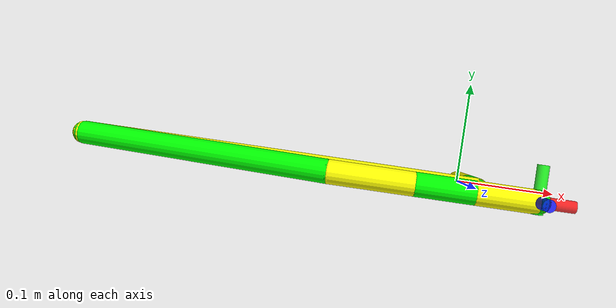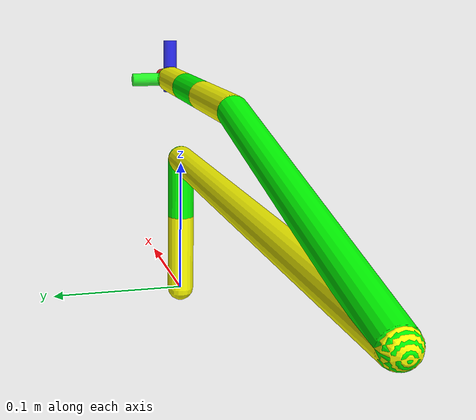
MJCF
<?xml version="1.0"?>
<mujoco>
    <compiler eulerseq="XYZ" angle="degree"/>
    <option gravity="0 0 0" timestep="0.001"/>

    <default class="main">
        <geom rgba="1 1 0 1"/> <!-- Yellow color -->
        <default class="sub">
            <geom rgba="0 1 0 1"/> <!-- Green color -->
        </default>
    </default>

    <worldbody>
        <body pos="0 0 0">
            <geom type="capsule" density="0.01" class="main" size="0.01 0.02925" pos="0 0 0.02925"/>
            <body name="robot" pos="0 0 0.0585">
                <geom type="capsule" density="0.01" class="sub" size="0.01 0.0225" pos="0 0 0.0225"/>
                <joint name="j0" type="hinge" axis="0 0 1" frictionloss="0.5"/>
                <body pos="0 0 0.045">
                    <geom type="capsule" density="0.01" class="main" size="0.01 0.175" pos="-0.175 0 0" euler="0 90 0"/>
                    <joint name="j1" type="hinge" axis="0 1 0" frictionloss="0.5"/>
                    <body pos="-0.35 0 0">
                        <geom type="capsule" density="0.01" class="sub" size="0.01 0.11265" pos="0.109 0 0.0285" euler="0 75.35 0"/>
                        <joint name="j2" type="hinge" axis="0 1 0" frictionloss="0.5"/>
                        <body pos="0.218 0 0.057">
                            <geom type="capsule" density="0.01" class="main" size="0.01 0.035" pos="0.035 0 0" euler="0 90 0"/>
                            <joint name="j3" type="hinge" axis="0 1 0" frictionloss="0.5"/>
                            <body pos="0.07 0 0" >
                                <geom type="capsule" density="0.01" class="sub" size="0.01 0.0246" pos="0.0246 0 0" euler="0 90 0"/>
                                <joint name="j4" type="hinge" axis="0 0 1" frictionloss="0.5"/>
                                <body pos="0.0492 0 0" >
                                    <geom type="capsule" density="0.01" class="main" size="0.01 0.0255" pos="0.0255 0 0" euler="0 90 0"/>
                                    <joint name="j5" type="hinge" axis="1 0 0" frictionloss="0.5"/>
                                    <body pos="0.051 0 0">
                                        <geom type="sphere" density="0.01" class="sub" size="0.01 0.01"/>
                                    </body>
                                </body>
                            </body>
                        </body>
                    </body>
                </body>
            </body>
        </body>

        <!-- For Tracking EEF  -->
        <body name="target" pos="0.0382 0 0.1605">
            <geom type="sphere" size="0.01" rgba="1 0 0 1" contype="0" conaffinity="0"/>
            <joint name="slide_x" type="slide" axis="1 0 0"/>
            <joint name="slide_y" type="slide" axis="0 1 0"/>
            <joint name="slide_z" type="slide" axis="0 0 1"/>

            <joint name="hinge_x" type="hinge" axis="1 0 0" frictionloss="0.5"/>
            <joint name="hinge_y" type="hinge" axis="0 1 0" frictionloss="0.5"/>
            <joint name="hinge_z" type="hinge" axis="0 0 1" frictionloss="0.5"/>

            <!-- X-axis (red) -->
            <geom type="cylinder" size="0.005 0.02" rgba="1 0 0 0.8" pos="0.01 0 0" euler="0 90 0"/>
            <!-- Y-axis (green) -->
            <geom type="cylinder" size="0.005 0.02" rgba="0 1 0 0.8" pos="0 0.01 0" euler="90 0 0"/>
            <!-- Z-axis (blue) -->
            <geom type="cylinder" size="0.005 0.02" rgba="0 0 1 0.8" pos="0 0 0.01" euler="0 0 0"/>
        </body>

        <camera mode="fixed" pos="-0.7 -0.7 1" euler="45 0 -45"/>

    </worldbody>

    <actuator>
        <motor joint="j0" ctrllimited="true" ctrlrange="-1 1" />
        <motor joint="j1" ctrllimited="true" ctrlrange="-1 1" />
        <motor joint="j2" ctrllimited="true" ctrlrange="-1 1" />
        <motor joint="j3" ctrllimited="true" ctrlrange="-1 1" />
        <motor joint="j4" ctrllimited="true" ctrlrange="-1 1" />
        <motor joint="j5" ctrllimited="true" ctrlrange="-1 1" />
    </actuator>

</mujoco>
